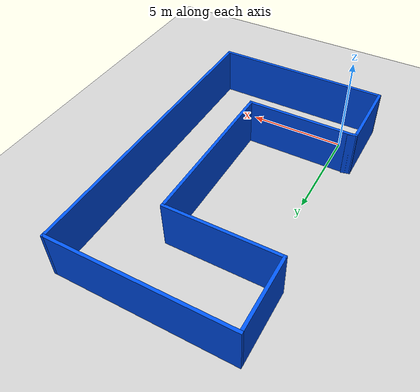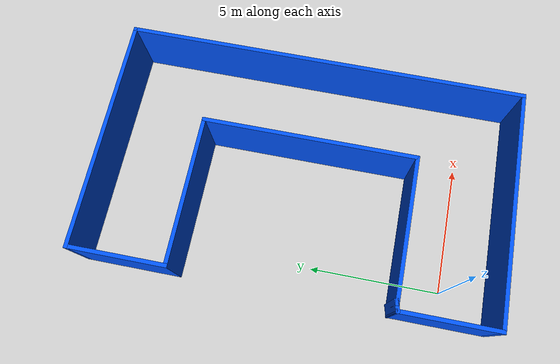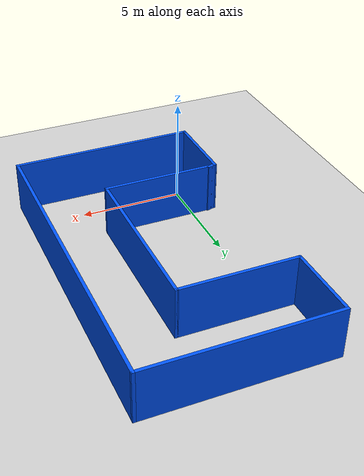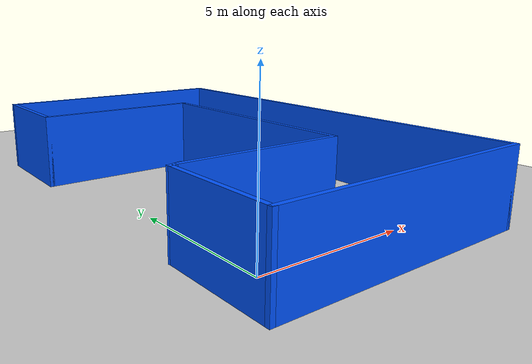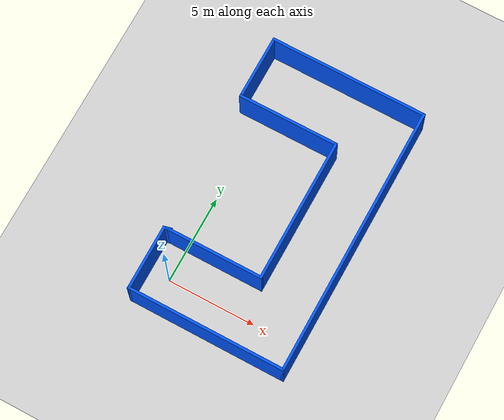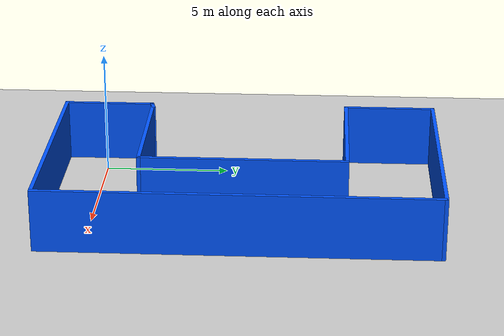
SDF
<sdf version="1.6">
 <world name="default">
  <light name="sun" type="directional">
   <pose>0 0 10 0 -0 0</pose>
   <diffuse>0.8 0.8 0.8 1</diffuse>
   <specular>0.2 0.2 0.2 1</specular>
   <attenuation>
    <range>1000</range>
    <constant>0.9</constant>
    <linear>0.01</linear>
    <quadratic>0.001</quadratic>
   </attenuation>
   <direction>-0.5 0.1 -0.9</direction>
  </light>
  <model name="ground_plane">
   <static>1</static>
   <link name="link">
    <collision name="collision">
     <geometry><plane><normal>0 0 1</normal><size>100 100</size></plane></geometry>
     <surface>
      <contact><collide_bitmask>65535</collide_bitmask></contact>
      <friction><ode><mu>100</mu><mu2>50</mu2></ode></friction>
     </surface>
    </collision>
    <visual name="visual">
     <cast_shadows>0</cast_shadows>
     <geometry><plane><normal>0 0 1</normal><size>100 100</size></plane></geometry>
     <material>
      <script><uri>file://media/materials/scripts/gazebo.material</uri><name>Gazebo/Grey</name></script>
     </material>
    </visual>
   </link>
  </model>
  <gravity>0 0 -9.8</gravity>
  <magnetic_field>6e-06 2.3e-05 -4.2e-05</magnetic_field>
  <atmosphere type="adiabatic"/>
  <physics name="default_physics" default="0" type="ode">
   <max_step_size>0.001</max_step_size>
   <real_time_factor>1</real_time_factor>
   <real_time_update_rate>1000</real_time_update_rate>
  </physics>
  <scene><ambient>0.4 0.4 0.4 1</ambient><background>0.7 0.7 0.7 1</background><shadows>1</shadows></scene>
  <spherical_coordinates>
   <surface_model>EARTH_WGS84</surface_model>
   <latitude_deg>0</latitude_deg>
   <longitude_deg>0</longitude_deg>
   <elevation>0</elevation>
   <heading_deg>0</heading_deg>
  </spherical_coordinates>
  <model name="myworld">
   <pose>3.23057 5.8685 0 0 -0 0</pose>
   <link name="Wall_10">
    <collision name="Wall_10_Collision">
     <geometry><box><size>5.5 0.15 2.5</size></box></geometry>
     <pose>0 0 1.25 0 -0 0</pose>
    </collision>
    <visual name="Wall_10_Visual">
     <pose>0 0 1.25 0 -0 0</pose>
     <geometry><box><size>5.5 0.15 2.5</size></box></geometry>
     <material>
      <script><uri>file://media/materials/scripts/gazebo.material</uri><name>Gazebo/Grey</name></script>
      <ambient>0 0.333333 1 1</ambient>
     </material>
     <meta><layer>0</layer></meta>
    </visual>
    <pose>-1.49157 -4.025 0 0 -0 3.14159</pose>
   </link>
   <link name="Wall_12">
    <collision name="Wall_12_Collision">
     <geometry><box><size>3.75 0.15 2.5</size></box></geometry>
     <pose>0 0 1.25 0 -0 0</pose>
    </collision>
    <visual name="Wall_12_Visual">
     <pose>0 0 1.25 0 -0 0</pose>
     <geometry><box><size>3.75 0.15 2.5</size></box></geometry>
     <material>
      <script><uri>file://media/materials/scripts/gazebo.material</uri><name>Gazebo/Grey</name></script>
      <ambient>0 0.333333 1 1</ambient>
     </material>
     <meta><layer>0</layer></meta>
    </visual>
    <pose>-4.41657 -5.875 0 0 -0 1.5708</pose>
   </link>
   <link name="Wall_13">
    <collision name="Wall_13_Collision">
     <geometry><box><size>0.5 0.15 2.5</size></box></geometry>
     <pose>0 0 1.25 0 -0 0</pose>
    </collision>
    <visual name="Wall_13_Visual">
     <pose>0 0 1.25 0 -0 0</pose>
     <geometry><box><size>0.5 0.15 2.5</size></box></geometry>
     <material>
      <script><uri>file://media/materials/scripts/gazebo.material</uri><name>Gazebo/Grey</name></script>
      <ambient>0 0.333333 1 1</ambient>
     </material>
     <meta><layer>0</layer></meta>
    </visual>
    <pose>-4.24754 -4.02971 0 0 -0 0.261799</pose>
   </link>
   <link name="Wall_2">
    <collision name="Wall_2_Collision">
     <geometry><box><size>9 0.15 2.5</size></box></geometry>
     <pose>0 0 1.25 0 -0 0</pose>
    </collision>
    <visual name="Wall_2_Visual">
     <pose>0 0 1.25 0 -0 0</pose>
     <geometry><box><size>9 0.15 2.5</size></box></geometry>
     <material>
      <script><uri>file://media/materials/scripts/gazebo.material</uri><name>Gazebo/Grey</name></script>
      <ambient>0 0.333333 1 1</ambient>
     </material>
     <meta><layer>0</layer></meta>
    </visual>
    <pose>0.008428 -7.675 0 0 -0 0</pose>
   </link>
   <link name="Wall_5">
    <collision name="Wall_5_Collision">
     <geometry><box><size>15.5 0.15 2.5</size></box></geometry>
     <pose>0 0 1.25 0 -0 0</pose>
    </collision>
    <visual name="Wall_5_Visual">
     <pose>0 0 1.25 0 -0 0</pose>
     <geometry><box><size>15.5 0.15 2.5</size></box></geometry>
     <material>
      <script><uri>file://media/materials/scripts/gazebo.material</uri><name>Gazebo/Grey</name></script>
      <ambient>0 0.333333 1 1</ambient>
     </material>
     <meta><layer>0</layer></meta>
    </visual>
    <pose>4.43343 0 0 0 -0 1.5708</pose>
   </link>
   <link name="Wall_6">
    <collision name="Wall_6_Collision">
     <geometry><box><size>9 0.15 2.5</size></box></geometry>
     <pose>0 0 1.25 0 -0 0</pose>
    </collision>
    <visual name="Wall_6_Visual">
     <pose>0 0 1.25 0 -0 0</pose>
     <geometry><box><size>9 0.15 2.5</size></box></geometry>
     <material>
      <script><uri>file://media/materials/scripts/gazebo.material</uri><name>Gazebo/Grey</name></script>
      <ambient>0 0.333333 1 1</ambient>
     </material>
     <meta><layer>0</layer></meta>
    </visual>
    <pose>0.008428 7.675 0 0 -0 3.14159</pose>
   </link>
   <link name="Wall_7">
    <collision name="Wall_7_Collision">
     <geometry><box><size>3.75 0.15 2.5</size></box></geometry>
     <pose>0 0 1.25 0 -0 0</pose>
    </collision>
    <visual name="Wall_7_Visual">
     <pose>0 0 1.25 0 -0 0</pose>
     <geometry><box><size>3.75 0.15 2.5</size></box></geometry>
     <material>
      <script><uri>file://media/materials/scripts/gazebo.material</uri><name>Gazebo/Grey</name></script>
      <ambient>0 0.333333 1 1</ambient>
     </material>
     <meta><layer>0</layer></meta>
    </visual>
    <pose>-4.41657 5.875 0 0 0 -1.5708</pose>
   </link>
   <link name="Wall_8">
    <collision name="Wall_8_Collision">
     <geometry><box><size>5.75 0.15 2.5</size></box></geometry>
     <pose>0 0 1.25 0 -0 0</pose>
    </collision>
    <visual name="Wall_8_Visual">
     <pose>0 0 1.25 0 -0 0</pose>
     <geometry><box><size>5.75 0.15 2.5</size></box></geometry>
     <material>
      <script><uri>file://media/materials/scripts/gazebo.material</uri><name>Gazebo/Grey</name></script>
      <ambient>0 0.333333 1 1</ambient>
     </material>
     <meta><layer>0</layer></meta>
    </visual>
    <pose>-1.61657 4.075 0 0 -0 0</pose>
   </link>
   <link name="Wall_9">
    <collision name="Wall_9_Collision">
     <geometry><box><size>8.25 0.15 2.5</size></box></geometry>
     <pose>0 0 1.25 0 -0 0</pose>
    </collision>
    <visual name="Wall_9_Visual">
     <pose>0 0 1.25 0 -0 0</pose>
     <geometry><box><size>8.25 0.15 2.5</size></box></geometry>
     <material>
      <script><uri>file://media/materials/scripts/gazebo.material</uri><name>Gazebo/Grey</name></script>
      <ambient>0 0.333333 1 1</ambient>
     </material>
     <meta><layer>0</layer></meta>
    </visual>
    <pose>1.18343 0.024999 0 0 0 -1.5708</pose>
   </link>
   <static>1</static>
  </model>
 </world>
</sdf>
